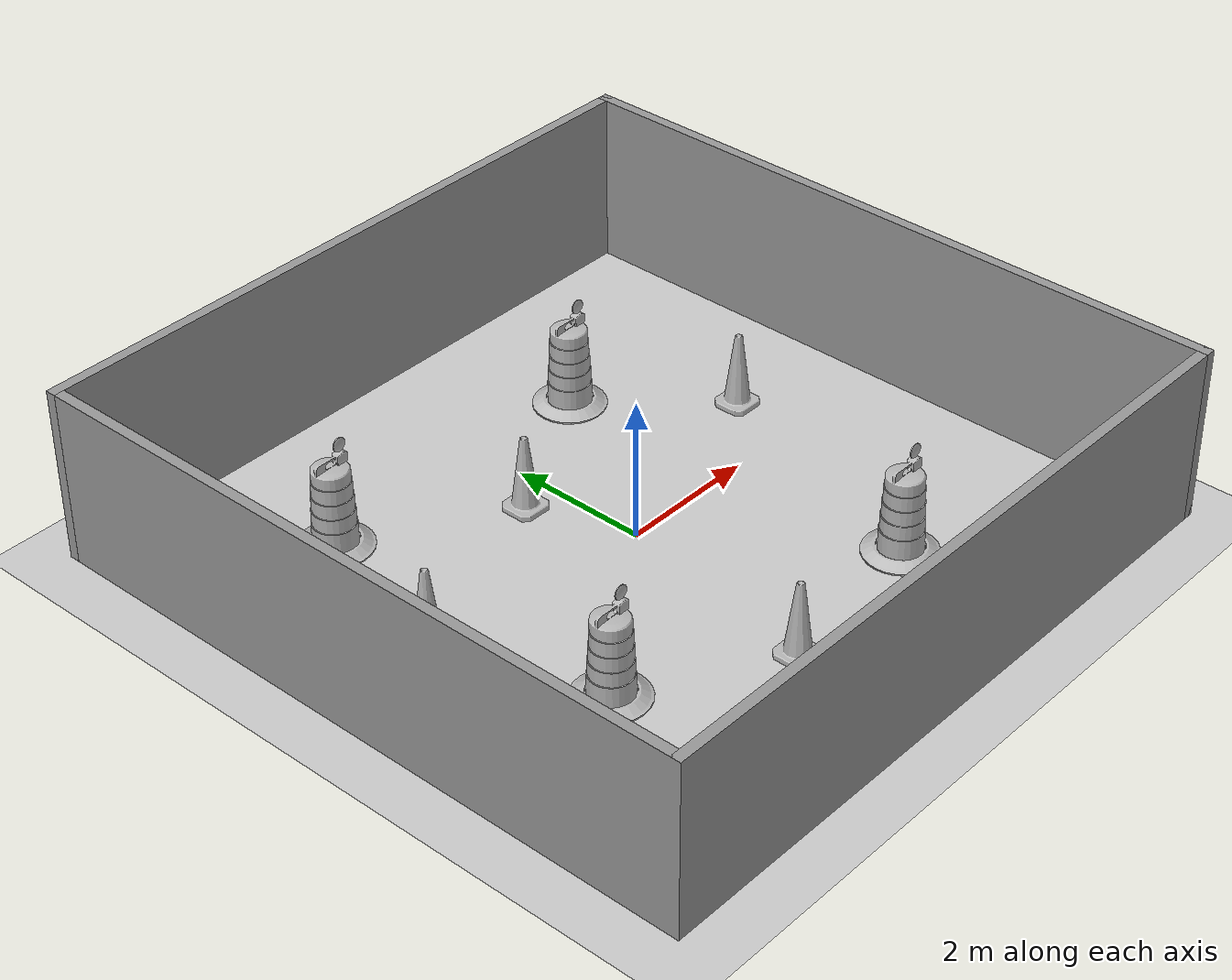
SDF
<sdf version="1.7">
 <world name="default">
  <light name="sun" type="directional">
   <pose>0 0 10 0 -0 0</pose>
   <diffuse>0.8 0.8 0.8 1</diffuse>
   <specular>0.2 0.2 0.2 1</specular>
   <attenuation>
    <range>1000</range>
    <constant>0.9</constant>
    <linear>0.01</linear>
    <quadratic>0.001</quadratic>
   </attenuation>
   <direction>-0.5 0.1 -0.9</direction>
   <spot><inner_angle>0</inner_angle><outer_angle>0</outer_angle><falloff>0</falloff></spot>
  </light>
  <model name="ground_plane">
   <static>1</static>
   <link name="link">
    <collision name="collision">
     <geometry><plane><normal>0 0 1</normal><size>100 100</size></plane></geometry>
     <surface><friction><ode><mu>100</mu><mu2>50</mu2></ode></friction></surface>
    </collision>
    <visual name="visual">
     <cast_shadows>0</cast_shadows>
     <geometry><plane><normal>0 0 1</normal><size>100 100</size></plane></geometry>
     <material>
      <script><uri>file://media/materials/scripts/gazebo.material</uri><name>Gazebo/Grey</name></script>
     </material>
    </visual>
   </link>
  </model>
  <gravity>0 0 -9.8</gravity>
  <magnetic_field>6e-06 2.3e-05 -4.2e-05</magnetic_field>
  <atmosphere type="adiabatic"/>
  <physics type="ode">
   <max_step_size>0.001</max_step_size>
   <real_time_factor>1</real_time_factor>
   <real_time_update_rate>1000</real_time_update_rate>
  </physics>
  <scene><ambient>0.4 0.4 0.4 1</ambient><background>0.7 0.7 0.7 1</background><shadows>1</shadows></scene>
  <audio><device>default</device></audio>
  <spherical_coordinates>
   <surface_model>EARTH_WGS84</surface_model>
   <latitude_deg>0</latitude_deg>
   <longitude_deg>0</longitude_deg>
   <elevation>0</elevation>
   <heading_deg>0</heading_deg>
  </spherical_coordinates>
  <model name="cuadro">
   <link name="Wall_12">
    <collision name="Wall_12_Collision">
     <geometry><box><size>10 0.15 2.5</size></box></geometry>
     <pose>0 0 1.25 0 -0 0</pose>
    </collision>
    <visual name="Wall_12_Visual">
     <pose>0 0 1.25 0 -0 0</pose>
     <geometry><box><size>10 0.15 2.5</size></box></geometry>
     <material>
      <script><uri>file://media/materials/scripts/gazebo.material</uri><name>Gazebo/Grey</name></script>
      <ambient>1 1 1 1</ambient>
     </material>
     <meta><layer>0</layer></meta>
    </visual>
    <pose>0 4.925 0 0 -0 0</pose>
   </link>
   <link name="Wall_13">
    <collision name="Wall_13_Collision">
     <geometry><box><size>10 0.15 2.5</size></box></geometry>
     <pose>0 0 1.25 0 -0 0</pose>
    </collision>
    <visual name="Wall_13_Visual">
     <pose>0 0 1.25 0 -0 0</pose>
     <geometry><box><size>10 0.15 2.5</size></box></geometry>
     <material>
      <script><uri>file://media/materials/scripts/gazebo.material</uri><name>Gazebo/Grey</name></script>
      <ambient>1 1 1 1</ambient>
     </material>
     <meta><layer>0</layer></meta>
    </visual>
    <pose>4.925 -0 0 0 -0 -1.5708</pose>
   </link>
   <link name="Wall_15">
    <collision name="Wall_15_Collision">
     <geometry><box><size>10 0.15 2.5</size></box></geometry>
     <pose>0 0 1.25 0 -0 0</pose>
    </collision>
    <visual name="Wall_15_Visual">
     <pose>0 0 1.25 0 -0 0</pose>
     <geometry><box><size>10 0.15 2.5</size></box></geometry>
     <material>
      <script><uri>file://media/materials/scripts/gazebo.material</uri><name>Gazebo/Grey</name></script>
      <ambient>1 1 1 1</ambient>
     </material>
     <meta><layer>0</layer></meta>
    </visual>
    <pose>-4.925 -0 0 0 -0 -1.5708</pose>
   </link>
   <link name="Wall_16">
    <collision name="Wall_16_Collision">
     <geometry><box><size>10 0.15 2.5</size></box></geometry>
     <pose>0 0 1.25 0 -0 0</pose>
    </collision>
    <visual name="Wall_16_Visual">
     <pose>0 0 1.25 0 -0 0</pose>
     <geometry><box><size>10 0.15 2.5</size></box></geometry>
     <material>
      <script><uri>file://media/materials/scripts/gazebo.material</uri><name>Gazebo/Grey</name></script>
      <ambient>1 1 1 1</ambient>
     </material>
     <meta><layer>0</layer></meta>
    </visual>
    <pose>0 -4.925 0 0 -0 0</pose>
   </link>
   <static>1</static>
  </model>
  <model name="Construction Barrel">
   <link name="link">
    <inertial>
     <pose>0 0 0.4 0 -0 0</pose>
     <mass>500</mass>
     <inertia><ixx>51.2096</ixx><iyy>51.2096</iyy><izz>25</izz><ixy>0</ixy><ixz>0</ixz><iyz>0</iyz></inertia>
    </inertial>
    <collision name="collision">
     <geometry><mesh><uri>model://construction_barrel/meshes/construction_barrel.dae</uri></mesh></geometry>
    </collision>
    <visual name="visual">
     <geometry><mesh><uri>model://construction_barrel/meshes/construction_barrel.dae</uri></mesh></geometry>
    </visual>
   </link>
   <pose>-2.53341 -1.83996 0 0 0 -1.5e-05</pose>
  </model>
  <model name="Construction Barrel_clone">
   <link name="link">
    <inertial>
     <pose>0 0 0.4 0 -0 0</pose>
     <mass>500</mass>
     <inertia><ixx>51.2096</ixx><iyy>51.2096</iyy><izz>25</izz><ixy>0</ixy><ixz>0</ixz><iyz>0</iyz></inertia>
    </inertial>
    <collision name="collision">
     <geometry><mesh><uri>model://construction_barrel/meshes/construction_barrel.dae</uri></mesh></geometry>
    </collision>
    <visual name="visual">
     <geometry><mesh><uri>model://construction_barrel/meshes/construction_barrel.dae</uri></mesh></geometry>
    </visual>
   </link>
   <pose>-2.64417 2.69835 -0 1e-06 -1e-06 -1.4e-05</pose>
  </model>
  <model name="Construction Barrel_clone_0">
   <link name="link">
    <inertial>
     <pose>0 0 0.4 0 -0 0</pose>
     <mass>500</mass>
     <inertia><ixx>51.2096</ixx><iyy>51.2096</iyy><izz>25</izz><ixy>0</ixy><ixz>0</ixz><iyz>0</iyz></inertia>
    </inertial>
    <collision name="collision">
     <geometry><mesh><uri>model://construction_barrel/meshes/construction_barrel.dae</uri></mesh></geometry>
    </collision>
    <visual name="visual">
     <geometry><mesh><uri>model://construction_barrel/meshes/construction_barrel.dae</uri></mesh></geometry>
    </visual>
   </link>
   <pose>1.6239 2.6325 -1e-06 0 5e-06 -1.2e-05</pose>
  </model>
  <model name="Construction Barrel_clone_1">
   <link name="link">
    <inertial>
     <pose>0 0 0.4 0 -0 0</pose>
     <mass>500</mass>
     <inertia><ixx>51.2096</ixx><iyy>51.2096</iyy><izz>25</izz><ixy>0</ixy><ixz>0</ixz><iyz>0</iyz></inertia>
    </inertial>
    <collision name="collision">
     <geometry><mesh><uri>model://construction_barrel/meshes/construction_barrel.dae</uri></mesh></geometry>
    </collision>
    <visual name="visual">
     <geometry><mesh><uri>model://construction_barrel/meshes/construction_barrel.dae</uri></mesh></geometry>
    </visual>
   </link>
   <pose>1.93708 -2.69034 -2e-06 0 7e-06 -1e-05</pose>
  </model>
  <model name="Construction Cone">
   <link name="link">
    <collision name="collision">
     <geometry>
      <mesh><scale>10 10 10</scale><uri>model://construction_cone/meshes/construction_cone.dae</uri></mesh>
     </geometry>
    </collision>
    <visual name="visual">
     <geometry>
      <mesh><scale>10 10 10</scale><uri>model://construction_cone/meshes/construction_cone.dae</uri></mesh>
     </geometry>
    </visual>
    <inertial>
     <inertia><ixx>1</ixx><ixy>0</ixy><ixz>0</ixz><iyy>1</iyy><iyz>0</iyz><izz>1</izz></inertia>
     <mass>1</mass>
    </inertial>
   </link>
   <pose>-3.23674 0.478664 -0 0 -0 0</pose>
  </model>
  <model name="Construction Cone_clone">
   <link name="link">
    <collision name="collision">
     <geometry>
      <mesh><scale>10 10 10</scale><uri>model://construction_cone/meshes/construction_cone.dae</uri></mesh>
     </geometry>
    </collision>
    <visual name="visual">
     <geometry>
      <mesh><scale>10 10 10</scale><uri>model://construction_cone/meshes/construction_cone.dae</uri></mesh>
     </geometry>
    </visual>
    <inertial>
     <inertia><ixx>1</ixx><ixy>0</ixy><ixz>0</ixz><iyy>1</iyy><iyz>0</iyz><izz>1</izz></inertia>
     <mass>1</mass>
    </inertial>
   </link>
   <pose>-0.501497 -3 -0 0 -1e-06 0</pose>
  </model>
  <model name="Construction Cone_clone_0">
   <link name="link">
    <collision name="collision">
     <geometry>
      <mesh><scale>10 10 10</scale><uri>model://construction_cone/meshes/construction_cone.dae</uri></mesh>
     </geometry>
    </collision>
    <visual name="visual">
     <geometry>
      <mesh><scale>10 10 10</scale><uri>model://construction_cone/meshes/construction_cone.dae</uri></mesh>
     </geometry>
    </visual>
    <inertial>
     <inertia><ixx>1</ixx><ixy>0</ixy><ixz>0</ixz><iyy>1</iyy><iyz>0</iyz><izz>1</izz></inertia>
     <mass>1</mass>
    </inertial>
   </link>
   <pose>3.1003 0.928319 -2e-06 -3e-06 -1e-06 -0</pose>
  </model>
  <model name="Construction Cone_clone_1">
   <link name="link">
    <collision name="collision">
     <geometry>
      <mesh><scale>10 10 10</scale><uri>model://construction_cone/meshes/construction_cone.dae</uri></mesh>
     </geometry>
    </collision>
    <visual name="visual">
     <geometry>
      <mesh><scale>10 10 10</scale><uri>model://construction_cone/meshes/construction_cone.dae</uri></mesh>
     </geometry>
    </visual>
    <inertial>
     <inertia><ixx>1</ixx><ixy>0</ixy><ixz>0</ixz><iyy>1</iyy><iyz>0</iyz><izz>1</izz></inertia>
     <mass>1</mass>
    </inertial>
   </link>
   <pose>-0.505117 1.44861 -0 -0 -0 -0</pose>
  </model>
 </world>
</sdf>
